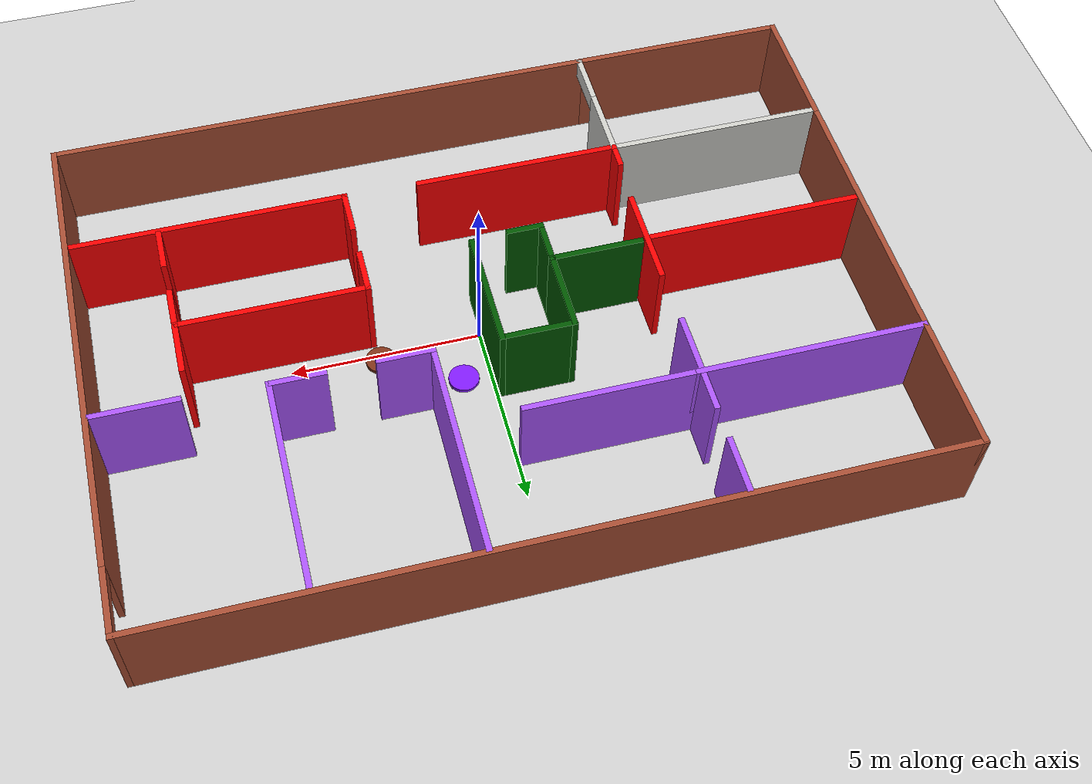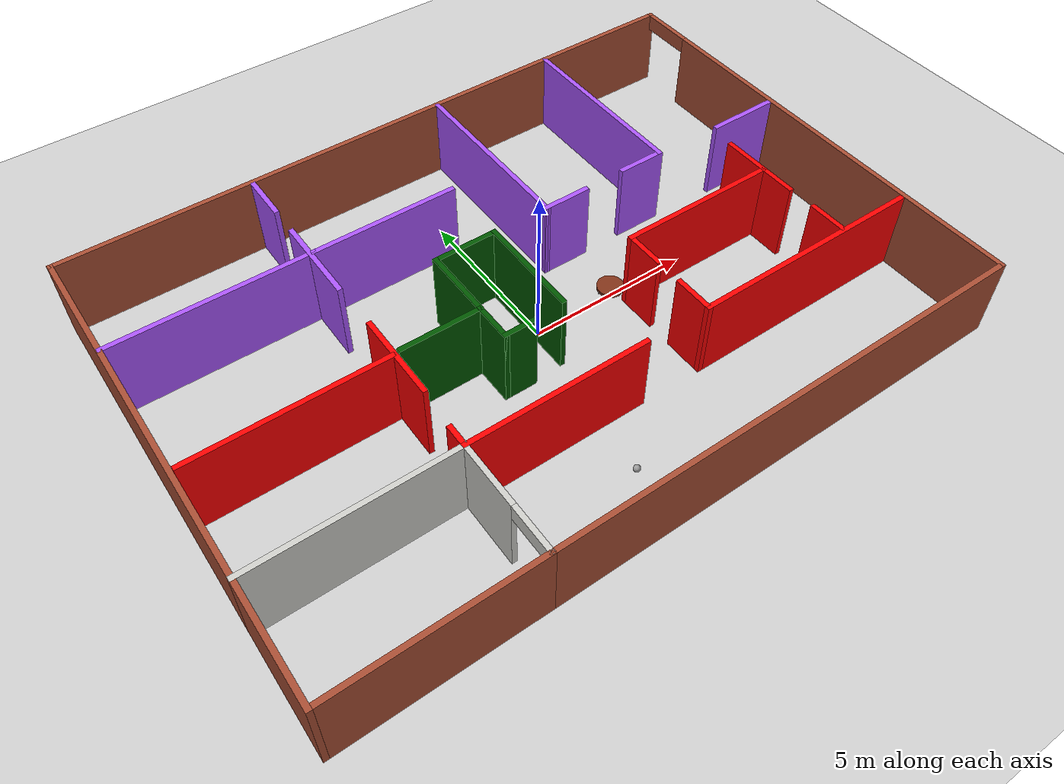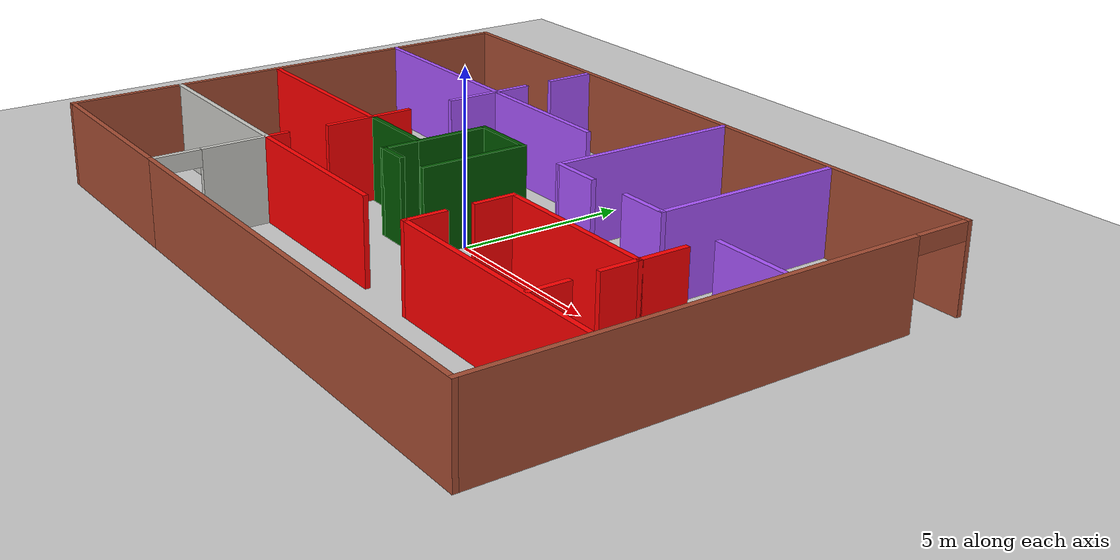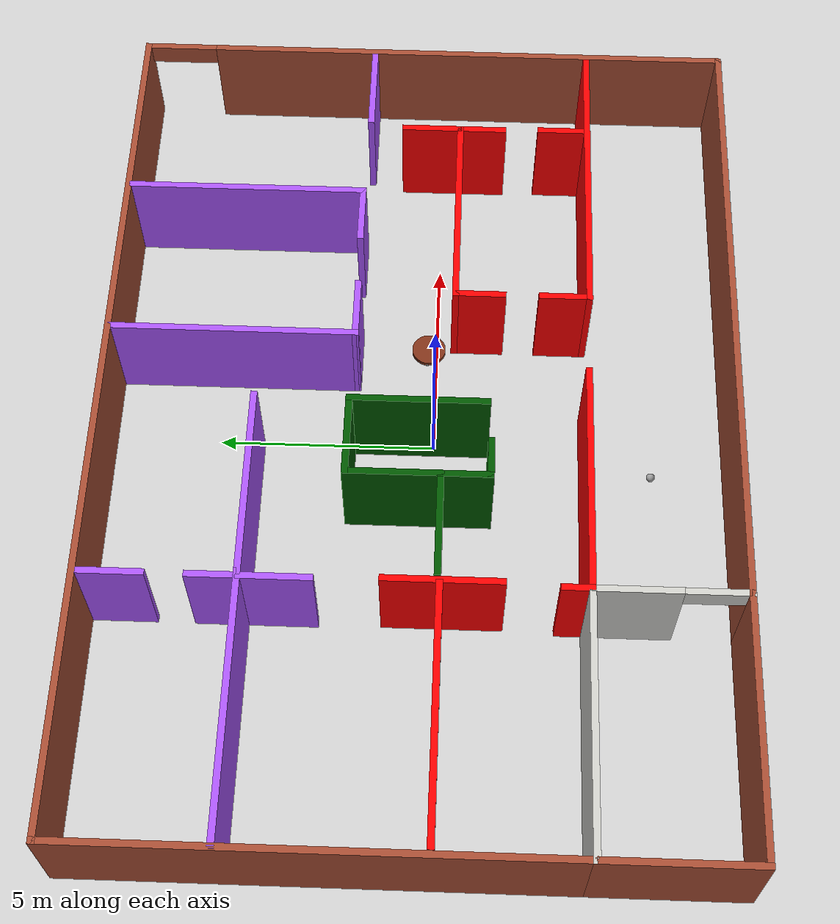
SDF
<sdf version="1.6">
 <world name="default">
  <plugin name="welcome" filename="libwelcome.so"/>
  <light name="sun" type="directional">
   <pose>0 0 10 0 -0 0</pose>
   <diffuse>0.8 0.8 0.8 1</diffuse>
   <specular>0.2 0.2 0.2 1</specular>
   <attenuation>
    <range>1000</range>
    <constant>0.9</constant>
    <linear>0.01</linear>
    <quadratic>0.001</quadratic>
   </attenuation>
   <direction>-0.5 0.1 -0.9</direction>
  </light>
  <model name="ground_plane">
   <static>1</static>
   <link name="link">
    <collision name="collision">
     <geometry><plane><normal>0 0 1</normal><size>100 100</size></plane></geometry>
     <surface><friction><ode><mu>100</mu><mu2>50</mu2></ode></friction></surface>
    </collision>
    <visual name="visual">
     <cast_shadows>0</cast_shadows>
     <geometry><plane><normal>0 0 1</normal><size>100 100</size></plane></geometry>
     <material>
      <script><uri>file://media/materials/scripts/gazebo.material</uri><name>Gazebo/Grey</name></script>
     </material>
    </visual>
   </link>
  </model>
  <gravity>0 0 -9.8</gravity>
  <magnetic_field>6e-06 2.3e-05 -4.2e-05</magnetic_field>
  <atmosphere type="adiabatic"/>
  <physics name="default_physics" default="0" type="ode">
   <max_step_size>0.001</max_step_size>
   <real_time_factor>1</real_time_factor>
   <real_time_update_rate>1000</real_time_update_rate>
  </physics>
  <scene><ambient>0.4 0.4 0.4 1</ambient><background>0.7 0.7 0.7 1</background><shadows>1</shadows></scene>
  <spherical_coordinates>
   <surface_model>EARTH_WGS84</surface_model>
   <latitude_deg>0</latitude_deg>
   <longitude_deg>0</longitude_deg>
   <elevation>0</elevation>
   <heading_deg>0</heading_deg>
  </spherical_coordinates>
  <model name="myhome">
   <pose>-0.1492 0.36301 0 0 -0 0</pose>
   <link name="Wall_0">
    <collision name="Wall_0_Collision">
     <geometry><box><size>11 0.15 2.5</size></box></geometry>
     <pose>0 0 1.25 0 -0 0</pose>
    </collision>
    <visual name="Wall_0_Visual">
     <pose>0 0 1.25 0 -0 0</pose>
     <geometry><box><size>11 0.15 2.5</size></box></geometry>
     <material>
      <script><uri>file://media/materials/scripts/gazebo.material</uri><name>Gazebo/Bricks</name></script>
      <ambient>1 1 1 1</ambient>
     </material>
     <meta><layer>0</layer></meta>
    </visual>
    <pose>-10.175 1.75 0 0 -0 1.5708</pose>
   </link>
   <link name="Wall_1">
    <collision name="Wall_1_Collision">
     <geometry><box><size>20.5 0.15 2.5</size></box></geometry>
     <pose>0 0 1.25 0 -0 0</pose>
    </collision>
    <visual name="Wall_1_Visual">
     <pose>0 0 1.25 0 -0 0</pose>
     <geometry><box><size>20.5 0.15 2.5</size></box></geometry>
     <material>
      <script><uri>file://media/materials/scripts/gazebo.material</uri><name>Gazebo/Bricks</name></script>
      <ambient>1 1 1 1</ambient>
     </material>
     <meta><layer>0</layer></meta>
    </visual>
    <pose>0 7.175 0 0 -0 0</pose>
   </link>
   <link name="Wall_12">
    <collision name="Wall_12_Collision">
     <geometry><box><size>5.75 0.15 2.5</size></box></geometry>
     <pose>0 0 1.25 0 -0 0</pose>
    </collision>
    <visual name="Wall_12_Visual">
     <pose>0 0 1.25 0 -0 0</pose>
     <geometry><box><size>5.75 0.15 2.5</size></box></geometry>
     <material>
      <script><uri>file://media/materials/scripts/gazebo.material</uri><name>Gazebo/Grey</name></script>
      <ambient>0.666667 0.333333 1 1</ambient>
     </material>
     <meta><layer>0</layer></meta>
    </visual>
    <pose>5.80825 4.32699 0 0 0 -1.5708</pose>
   </link>
   <link name="Wall_18">
    <collision name="Wall_18_Collision">
     <geometry><box><size>5.5 0.15 2.5</size></box></geometry>
     <pose>0 0 1.25 0 -0 0</pose>
    </collision>
    <visual name="Wall_18_Visual">
     <pose>0 0 1.25 0 -0 0</pose>
     <geometry><box><size>5.5 0.15 2.5</size></box></geometry>
     <material>
      <script><uri>file://media/materials/scripts/gazebo.material</uri><name>Gazebo/Grey</name></script>
      <ambient>1 0 0 1</ambient>
     </material>
     <meta><layer>0</layer></meta>
    </visual>
    <pose>-1.75 -3.825 0 0 -0 0</pose>
   </link>
   <link name="Wall_2">
    <pose>10.175 0 0 0 0 -1.5708</pose>
    <visual name="Wall_2_Visual_0">
     <pose>-7.17641 0 1.25 0 -0 0</pose>
     <geometry><box><size>0.147184 0.15 2.5</size></box></geometry>
     <material>
      <script><uri>file://media/materials/scripts/gazebo.material</uri><name>Gazebo/Bricks</name></script>
      <ambient>1 1 1 1</ambient>
     </material>
     <meta><layer>0</layer></meta>
    </visual>
    <collision name="Wall_2_Collision_0">
     <geometry><box><size>0.147184 0.15 2.5</size></box></geometry>
     <pose>-7.17641 0 1.25 0 -0 0</pose>
    </collision>
    <visual name="Wall_2_Visual_1">
     <pose>0.893682 0 1.25 0 -0 0</pose>
     <geometry><box><size>12.7126 0.15 2.5</size></box></geometry>
     <material>
      <script><uri>file://media/materials/scripts/gazebo.material</uri><name>Gazebo/Bricks</name></script>
      <ambient>1 1 1 1</ambient>
     </material>
     <meta><layer>0</layer></meta>
    </visual>
    <collision name="Wall_2_Collision_1">
     <geometry><box><size>12.7126 0.15 2.5</size></box></geometry>
     <pose>0.893682 0 1.25 0 -0 0</pose>
    </collision>
    <visual name="Wall_2_Visual_2">
     <pose>-6.28273 0 2.25 0 -0 0</pose>
     <geometry><box><size>1.64018 0.15 0.5</size></box></geometry>
     <material>
      <script><uri>file://media/materials/scripts/gazebo.material</uri><name>Gazebo/Bricks</name></script>
      <ambient>1 1 1 1</ambient>
     </material>
     <meta><layer>0</layer></meta>
    </visual>
    <collision name="Wall_2_Collision_2">
     <geometry><box><size>1.64018 0.15 0.5</size></box></geometry>
     <pose>-6.28273 0 2.25 0 -0 0</pose>
    </collision>
   </link>
   <link name="Wall_20">
    <collision name="Wall_20_Collision">
     <geometry><box><size>7.25 0.15 2.5</size></box></geometry>
     <pose>0 0 1.25 0 -0 0</pose>
    </collision>
    <visual name="Wall_20_Visual">
     <pose>0 0 1.25 0 -0 0</pose>
     <geometry><box><size>7.25 0.15 2.5</size></box></geometry>
     <material>
      <script><uri>file://media/materials/scripts/gazebo.material</uri><name>Gazebo/Grey</name></script>
      <ambient>1 0 0 1</ambient>
     </material>
     <meta><layer>0</layer></meta>
    </visual>
    <pose>6.46692 -3.86004 0 0 -0 0</pose>
   </link>
   <link name="Wall_22">
    <collision name="Wall_22_Collision">
     <geometry><box><size>2.249 0.15 2.5</size></box></geometry>
     <pose>0 0 1.25 0 -0 0</pose>
    </collision>
    <visual name="Wall_22_Visual">
     <pose>0 0 1.25 0 -0 0</pose>
     <geometry><box><size>2.249 0.15 2.5</size></box></geometry>
     <material>
      <script><uri>file://media/materials/scripts/gazebo.material</uri><name>Gazebo/Grey</name></script>
      <ambient>0.666667 0.333333 1 1</ambient>
     </material>
     <meta><layer>0</layer></meta>
    </visual>
    <pose>9.00955 1.43713 0 0 -0 0</pose>
   </link>
   <link name="Wall_3">
    <collision name="Wall_3_Collision">
     <geometry><box><size>14.75 0.15 2.5</size></box></geometry>
     <pose>0 0 1.25 0 -0 0</pose>
    </collision>
    <visual name="Wall_3_Visual">
     <pose>0 0 1.25 0 -0 0</pose>
     <geometry><box><size>14.75 0.15 2.5</size></box></geometry>
     <material>
      <script><uri>file://media/materials/scripts/gazebo.material</uri><name>Gazebo/Bricks</name></script>
      <ambient>1 1 1 1</ambient>
     </material>
     <meta><layer>0</layer></meta>
    </visual>
    <pose>2.875 -7.175 0 0 -0 3.14159</pose>
   </link>
   <link name="Wall_30">
    <collision name="Wall_30_Collision">
     <geometry><box><size>5.75 0.15 2.5</size></box></geometry>
     <pose>0 0 1.25 0 -0 0</pose>
    </collision>
    <visual name="Wall_30_Visual">
     <pose>0 0 1.25 0 -0 0</pose>
     <geometry><box><size>5.75 0.15 2.5</size></box></geometry>
     <material>
      <script><uri>file://media/materials/scripts/gazebo.material</uri><name>Gazebo/Grey</name></script>
      <ambient>1 0 0 1</ambient>
     </material>
     <meta><layer>0</layer></meta>
    </visual>
    <pose>-7.21309 -0.598629 0 0 -0 0</pose>
   </link>
   <link name="Wall_32">
    <collision name="Wall_32_Collision">
     <geometry><box><size>6 0.15 2.5</size></box></geometry>
     <pose>0 0 1.25 0 -0 0</pose>
    </collision>
    <visual name="Wall_32_Visual">
     <pose>0 0 1.25 0 -0 0</pose>
     <geometry><box><size>6 0.15 2.5</size></box></geometry>
     <material>
      <script><uri>file://media/materials/scripts/gazebo.material</uri><name>Gazebo/Grey</name></script>
      <ambient>0.666667 0.333333 1 1</ambient>
     </material>
     <meta><layer>0</layer></meta>
    </visual>
    <pose>-7.22687 3.68053 0 0 -0 0</pose>
   </link>
   <link name="Wall_34">
    <collision name="Wall_34_Collision">
     <geometry><box><size>2.75 0.15 2.5</size></box></geometry>
     <pose>0 0 1.25 0 -0 0</pose>
    </collision>
    <visual name="Wall_34_Visual">
     <pose>0 0 1.25 0 -0 0</pose>
     <geometry><box><size>2.75 0.15 2.5</size></box></geometry>
     <material>
      <script><uri>file://media/materials/scripts/gazebo.material</uri><name>Gazebo/Grey</name></script>
      <ambient>0.666667 0.333333 1 1</ambient>
     </material>
     <meta><layer>0</layer></meta>
    </visual>
    <pose>-4.39439 3.43427 0 0 0 -1.5708</pose>
   </link>
   <link name="Wall_36">
    <collision name="Wall_36_Collision">
     <geometry><box><size>2.7 0.15 2.5</size></box></geometry>
     <pose>0 0 1.25 0 -0 0</pose>
    </collision>
    <visual name="Wall_36_Visual">
     <pose>0 0 1.25 0 -0 0</pose>
     <geometry><box><size>2.7 0.15 2.5</size></box></geometry>
     <material>
      <script><uri>file://media/materials/scripts/gazebo.material</uri><name>Gazebo/Grey</name></script>
      <ambient>1 0 0 1</ambient>
     </material>
     <meta><layer>0</layer></meta>
    </visual>
    <pose>-4.34609 -0.670837 0 0 0 -1.5708</pose>
   </link>
   <link name="Wall_38">
    <collision name="Wall_38_Collision">
     <geometry><box><size>5.75 0.15 2.5</size></box></geometry>
     <pose>0 0 1.25 0 -0 0</pose>
    </collision>
    <visual name="Wall_38_Visual">
     <pose>0 0 1.25 0 -0 0</pose>
     <geometry><box><size>5.75 0.15 2.5</size></box></geometry>
     <material>
      <script><uri>file://media/materials/scripts/gazebo.material</uri><name>Gazebo/Grey</name></script>
      <ambient>0.666667 0.333333 1 1</ambient>
     </material>
     <meta><layer>0</layer></meta>
    </visual>
    <pose>1.76127 4.30479 0 0 0 -1.57115</pose>
   </link>
   <link name="Wall_4">
    <pose>-4.425 -5.5 0 0 -0 1.5708</pose>
    <visual name="Wall_4_Visual_0">
     <pose>-1.68521 0 1.25 0 -0 0</pose>
     <geometry><box><size>0.129586 0.15 2.5</size></box></geometry>
     <material>
      <script><uri>file://media/materials/scripts/gazebo.material</uri><name>Gazebo/CeilingTiled</name></script>
      <ambient>1 0 0 1</ambient>
     </material>
     <meta><layer>0</layer></meta>
    </visual>
    <collision name="Wall_4_Collision_0">
     <geometry><box><size>0.129586 0.15 2.5</size></box></geometry>
     <pose>-1.68521 0 1.25 0 -0 0</pose>
    </collision>
    <visual name="Wall_4_Visual_1">
     <pose>0.746099 0 1.25 0 -0 0</pose>
     <geometry><box><size>2.0078 0.15 2.5</size></box></geometry>
     <material>
      <script><uri>file://media/materials/scripts/gazebo.material</uri><name>Gazebo/CeilingTiled</name></script>
      <ambient>1 0 0 1</ambient>
     </material>
     <meta><layer>0</layer></meta>
    </visual>
    <collision name="Wall_4_Collision_1">
     <geometry><box><size>2.0078 0.15 2.5</size></box></geometry>
     <pose>0.746099 0 1.25 0 -0 0</pose>
    </collision>
    <visual name="Wall_4_Visual_2">
     <pose>-0.939108 0 2.25 0 -0 0</pose>
     <geometry><box><size>1.36261 0.15 0.5</size></box></geometry>
     <material>
      <script><uri>file://media/materials/scripts/gazebo.material</uri><name>Gazebo/CeilingTiled</name></script>
      <ambient>1 0 0 1</ambient>
     </material>
     <meta><layer>0</layer></meta>
    </visual>
    <collision name="Wall_4_Collision_2">
     <geometry><box><size>1.36261 0.15 0.5</size></box></geometry>
     <pose>-0.939108 0 2.25 0 -0 0</pose>
    </collision>
   </link>
   <link name="Wall_40">
    <collision name="Wall_40_Collision">
     <geometry><box><size>4.5 0.15 2.5</size></box></geometry>
     <pose>0 0 1.25 0 -0 0</pose>
    </collision>
    <visual name="Wall_40_Visual">
     <pose>0 0 1.25 0 -0 0</pose>
     <geometry><box><size>4.5 0.15 2.5</size></box></geometry>
     <material>
      <script><uri>file://media/materials/scripts/gazebo.material</uri><name>Gazebo/Grey</name></script>
      <ambient>0.666667 0.333333 1 1</ambient>
     </material>
     <meta><layer>0</layer></meta>
    </visual>
    <pose>-2.12687 3.68053 0 0 -0 0</pose>
   </link>
   <link name="Wall_42">
    <collision name="Wall_42_Collision">
     <geometry><box><size>2.5 0.15 2.5</size></box></geometry>
     <pose>0 0 1.25 0 -0 0</pose>
    </collision>
    <visual name="Wall_42_Visual">
     <pose>0 0 1.25 0 -0 0</pose>
     <geometry><box><size>2.5 0.15 2.5</size></box></geometry>
     <material>
      <script><uri>file://media/materials/scripts/gazebo.material</uri><name>Gazebo/Grey</name></script>
      <ambient>0 0.333333 0 1</ambient>
     </material>
     <meta><layer>0</layer></meta>
    </visual>
    <pose>-2.98604 -0.552368 0 0 -0 0</pose>
   </link>
   <link name="Wall_43">
    <collision name="Wall_43_Collision">
     <geometry><box><size>2.25 0.15 2.5</size></box></geometry>
     <pose>0 0 1.25 0 -0 0</pose>
    </collision>
    <visual name="Wall_43_Visual">
     <pose>0 0 1.25 0 -0 0</pose>
     <geometry><box><size>2.25 0.15 2.5</size></box></geometry>
     <material>
      <script><uri>file://media/materials/scripts/gazebo.material</uri><name>Gazebo/Grey</name></script>
      <ambient>0 0.333333 0 1</ambient>
     </material>
     <meta><layer>0</layer></meta>
    </visual>
    <pose>-1.81104 0.497632 0 0 -0 1.5708</pose>
   </link>
   <link name="Wall_44">
    <collision name="Wall_44_Collision">
     <geometry><box><size>2 0.15 2.5</size></box></geometry>
     <pose>0 0 1.25 0 -0 0</pose>
    </collision>
    <visual name="Wall_44_Visual">
     <pose>0 0 1.25 0 -0 0</pose>
     <geometry><box><size>2 0.15 2.5</size></box></geometry>
     <material>
      <script><uri>file://media/materials/scripts/gazebo.material</uri><name>Gazebo/Grey</name></script>
      <ambient>0 0.333333 0 1</ambient>
     </material>
     <meta><layer>0</layer></meta>
    </visual>
    <pose>-0.886042 1.54763 0 0 -0 0</pose>
   </link>
   <link name="Wall_45">
    <collision name="Wall_45_Collision">
     <geometry><box><size>3.25 0.15 2.5</size></box></geometry>
     <pose>0 0 1.25 0 -0 0</pose>
    </collision>
    <visual name="Wall_45_Visual">
     <pose>0 0 1.25 0 -0 0</pose>
     <geometry><box><size>3.25 0.15 2.5</size></box></geometry>
     <material>
      <script><uri>file://media/materials/scripts/gazebo.material</uri><name>Gazebo/Grey</name></script>
      <ambient>0 0.333333 0 1</ambient>
     </material>
     <meta><layer>0</layer></meta>
    </visual>
    <pose>0.038958 -0.002368 0 0 0 -1.5708</pose>
   </link>
   <link name="Wall_49">
    <collision name="Wall_49_Collision">
     <geometry><box><size>1.25 0.15 2.5</size></box></geometry>
     <pose>0 0 1.25 0 -0 0</pose>
    </collision>
    <visual name="Wall_49_Visual">
     <pose>0 0 1.25 0 -0 0</pose>
     <geometry><box><size>1.25 0.15 2.5</size></box></geometry>
     <material>
      <script><uri>file://media/materials/scripts/gazebo.material</uri><name>Gazebo/Grey</name></script>
      <ambient>0 0.333333 0 1</ambient>
     </material>
     <meta><layer>0</layer></meta>
    </visual>
    <pose>-1.81104 -1.10237 0 0 0 -1.5708</pose>
   </link>
   <link name="Wall_5">
    <collision name="Wall_5_Collision">
     <geometry><box><size>5.89995 0.15 2.5</size></box></geometry>
     <pose>0 0 1.25 0 -0 0</pose>
    </collision>
    <visual name="Wall_5_Visual">
     <pose>0 0 1.25 0 -0 0</pose>
     <geometry><box><size>5.89995 0.15 2.5</size></box></geometry>
     <material>
      <script><uri>file://media/materials/scripts/gazebo.material</uri><name>Gazebo/CeilingTiled</name></script>
      <ambient>1 0 0 1</ambient>
     </material>
     <meta><layer>0</layer></meta>
    </visual>
    <pose>-7.29998 -3.82493 0 0 -0 3.14157</pose>
   </link>
   <link name="Wall_50">
    <collision name="Wall_50_Collision">
     <geometry><box><size>1 0.15 2.5</size></box></geometry>
     <pose>0 0 1.25 0 -0 0</pose>
    </collision>
    <visual name="Wall_50_Visual">
     <pose>0 0 1.25 0 -0 0</pose>
     <geometry><box><size>1 0.15 2.5</size></box></geometry>
     <material>
      <script><uri>file://media/materials/scripts/gazebo.material</uri><name>Gazebo/Grey</name></script>
      <ambient>0 0.333333 0 1</ambient>
     </material>
     <meta><layer>0</layer></meta>
    </visual>
    <pose>-1.38604 -1.65237 0 0 -0 0</pose>
   </link>
   <link name="Wall_53">
    <collision name="Wall_53_Collision">
     <geometry><box><size>5 0.15 2.5</size></box></geometry>
     <pose>0 0 1.25 0 -0 0</pose>
    </collision>
    <visual name="Wall_53_Visual">
     <pose>0 0 1.25 0 -0 0</pose>
     <geometry><box><size>5 0.15 2.5</size></box></geometry>
     <material>
      <script><uri>file://media/materials/scripts/gazebo.material</uri><name>Gazebo/Grey</name></script>
      <ambient>1 0 0 1</ambient>
     </material>
     <meta><layer>0</layer></meta>
    </visual>
    <pose>5.34192 -0.760045 0 0 -0 0</pose>
   </link>
   <link name="Wall_54">
    <collision name="Wall_54_Collision">
     <geometry><box><size>1.5 0.15 2.5</size></box></geometry>
     <pose>0 0 1.25 0 -0 0</pose>
    </collision>
    <visual name="Wall_54_Visual">
     <pose>0 0 1.25 0 -0 0</pose>
     <geometry><box><size>1.5 0.15 2.5</size></box></geometry>
     <material>
      <script><uri>file://media/materials/scripts/gazebo.material</uri><name>Gazebo/Grey</name></script>
      <ambient>1 0 0 1</ambient>
     </material>
     <meta><layer>0</layer></meta>
    </visual>
    <pose>7.76692 -0.085045 0 0 -0 1.5708</pose>
   </link>
   <link name="Wall_56">
    <collision name="Wall_56_Collision">
     <geometry><box><size>1.5 0.15 2.5</size></box></geometry>
     <pose>0 0 1.25 0 -0 0</pose>
    </collision>
    <visual name="Wall_56_Visual">
     <pose>0 0 1.25 0 -0 0</pose>
     <geometry><box><size>1.5 0.15 2.5</size></box></geometry>
     <material>
      <script><uri>file://media/materials/scripts/gazebo.material</uri><name>Gazebo/Grey</name></script>
      <ambient>0.666667 0.333333 1 1</ambient>
     </material>
     <meta><layer>0</layer></meta>
    </visual>
    <pose>2.43527 1.50479 0 0 -0 0</pose>
   </link>
   <link name="Wall_58">
    <collision name="Wall_58_Collision">
     <geometry><box><size>1.5 0.15 2.5</size></box></geometry>
     <pose>0 0 1.25 0 -0 0</pose>
    </collision>
    <visual name="Wall_58_Visual">
     <pose>0 0 1.25 0 -0 0</pose>
     <geometry><box><size>1.5 0.15 2.5</size></box></geometry>
     <material>
      <script><uri>file://media/materials/scripts/gazebo.material</uri><name>Gazebo/Grey</name></script>
      <ambient>0.666667 0.333333 1 1</ambient>
     </material>
     <meta><layer>0</layer></meta>
    </visual>
    <pose>5.13325 1.52699 0 0 -0 3.14159</pose>
   </link>
   <link name="Wall_6">
    <collision name="Wall_6_Collision">
     <geometry><box><size>3.5 0.15 2.5</size></box></geometry>
     <pose>0 0 1.25 0 -0 0</pose>
    </collision>
    <visual name="Wall_6_Visual">
     <pose>0 0 1.25 0 -0 0</pose>
     <geometry><box><size>3.5 0.15 2.5</size></box></geometry>
     <material>
      <script><uri>file://media/materials/scripts/gazebo.material</uri><name>Gazebo/Bricks</name></script>
      <ambient>1 1 1 1</ambient>
     </material>
     <meta><layer>0</layer></meta>
    </visual>
    <pose>-10.175 -5.49987 0 0 0 -1.5708</pose>
   </link>
   <link name="Wall_60">
    <collision name="Wall_60_Collision">
     <geometry><box><size>1.5 0.15 2.5</size></box></geometry>
     <pose>0 0 1.25 0 -0 0</pose>
    </collision>
    <visual name="Wall_60_Visual">
     <pose>0 0 1.25 0 -0 0</pose>
     <geometry><box><size>1.5 0.15 2.5</size></box></geometry>
     <material>
      <script><uri>file://media/materials/scripts/gazebo.material</uri><name>Gazebo/Grey</name></script>
      <ambient>0.666667 0.333333 1 1</ambient>
     </material>
     <meta><layer>0</layer></meta>
    </visual>
    <pose>-4.39235 6.3826 0 0 0 -1.5708</pose>
   </link>
   <link name="Wall_62">
    <collision name="Wall_62_Collision">
     <geometry><box><size>0.75 0.15 2.5</size></box></geometry>
     <pose>0 0 1.25 0 -0 0</pose>
    </collision>
    <visual name="Wall_62_Visual">
     <pose>0 0 1.25 0 -0 0</pose>
     <geometry><box><size>0.75 0.15 2.5</size></box></geometry>
     <material>
      <script><uri>file://media/materials/scripts/gazebo.material</uri><name>Gazebo/Grey</name></script>
      <ambient>1 0 0 1</ambient>
     </material>
     <meta><layer>0</layer></meta>
    </visual>
    <pose>-4.425 -3.525 0 0 -0 1.5708</pose>
   </link>
   <link name="Wall_64">
    <collision name="Wall_64_Collision">
     <geometry><box><size>1.2 0.15 2.5</size></box></geometry>
     <pose>0 0 1.25 0 -0 0</pose>
    </collision>
    <visual name="Wall_64_Visual">
     <pose>0 0 1.25 0 -0 0</pose>
     <geometry><box><size>1.2 0.15 2.5</size></box></geometry>
     <material>
      <script><uri>file://media/materials/scripts/gazebo.material</uri><name>Gazebo/Grey</name></script>
      <ambient>1 0 0 1</ambient>
     </material>
     <meta><layer>0</layer></meta>
    </visual>
    <pose>7.76692 -1.28504 0 0 0 -1.5708</pose>
   </link>
   <link name="Wall_66">
    <collision name="Wall_66_Collision">
     <geometry><box><size>1.2 0.15 2.5</size></box></geometry>
     <pose>0 0 1.25 0 -0 0</pose>
    </collision>
    <visual name="Wall_66_Visual">
     <pose>0 0 1.25 0 -0 0</pose>
     <geometry><box><size>1.2 0.15 2.5</size></box></geometry>
     <material>
      <script><uri>file://media/materials/scripts/gazebo.material</uri><name>Gazebo/Grey</name></script>
      <ambient>1 0 0 1</ambient>
     </material>
     <meta><layer>0</layer></meta>
    </visual>
    <pose>7.79748 -3.25164 0 0 0 -1.5708</pose>
   </link>
   <link name="Wall_68">
    <collision name="Wall_68_Collision">
     <geometry><box><size>1.25 0.15 2.5</size></box></geometry>
     <pose>0 0 1.25 0 -0 0</pose>
    </collision>
    <visual name="Wall_68_Visual">
     <pose>0 0 1.25 0 -0 0</pose>
     <geometry><box><size>1.25 0.15 2.5</size></box></geometry>
     <material>
      <script><uri>file://media/materials/scripts/gazebo.material</uri><name>Gazebo/Grey</name></script>
      <ambient>1 0 0 1</ambient>
     </material>
     <meta><layer>0</layer></meta>
    </visual>
    <pose>2.91692 -1.31004 0 0 0 -1.5708</pose>
   </link>
   <link name="Wall_70">
    <collision name="Wall_70_Collision">
     <geometry><box><size>1.25 0.15 2.5</size></box></geometry>
     <pose>0 0 1.25 0 -0 0</pose>
    </collision>
    <visual name="Wall_70_Visual">
     <pose>0 0 1.25 0 -0 0</pose>
     <geometry><box><size>1.25 0.15 2.5</size></box></geometry>
     <material>
      <script><uri>file://media/materials/scripts/gazebo.material</uri><name>Gazebo/Grey</name></script>
      <ambient>1 0 0 1</ambient>
     </material>
     <meta><layer>0</layer></meta>
    </visual>
    <pose>2.91692 -3.31005 0 0 -0 1.5708</pose>
   </link>
   <link name="Wall_9">
    <collision name="Wall_9_Collision">
     <geometry><box><size>5.75 0.15 2.5</size></box></geometry>
     <pose>0 0 1.25 0 -0 0</pose>
    </collision>
    <visual name="Wall_9_Visual">
     <pose>0 0 1.25 0 -0 0</pose>
     <geometry><box><size>5.75 0.15 2.5</size></box></geometry>
     <material>
      <script><uri>file://media/materials/scripts/gazebo.material</uri><name>Gazebo/Bricks</name></script>
      <ambient>1 1 1 1</ambient>
     </material>
     <meta><layer>0</layer></meta>
    </visual>
    <pose>-7.225 -7.175 0 0 -0 3.14159</pose>
   </link>
   <static>1</static>
  </model>
  <model name="myrobot">
   <link name="link_0">
    <pose>-0.004537 0.01028 0.0375 0 -0 0</pose>
    <inertial>
     <mass>1</mass>
     <inertia><ixx>0.145833</ixx><ixy>0</ixy><ixz>0</ixz><iyy>0.145833</iyy><iyz>0</iyz><izz>0.125</izz></inertia>
    </inertial>
    <visual name="visual">
     <geometry><cylinder><radius>0.4</radius><length>0.1</length></cylinder></geometry>
     <material>
      <lighting>1</lighting>
      <script><uri>file://media/materials/scripts/gazebo.material</uri><name>Gazebo/Grey</name></script>
      <ambient>0.8 0.6 0.2 0.8</ambient>
      <diffuse>0.5 0.2 0.1 1</diffuse>
      <specular>0.01 0.01 0.01 1</specular>
      <emissive>0 0 0 1</emissive>
      <shader type="vertex"><normal_map>__default__</normal_map></shader>
     </material>
    </visual>
    <collision name="collision">
     <geometry><cylinder><radius>0.4</radius><length>0.1</length></cylinder></geometry>
     <surface>
      <friction>
       <ode><mu>1</mu><mu2>1</mu2><fdir1>0 0 0</fdir1><slip1>0</slip1><slip2>0</slip2></ode>
       <torsional>
        <coefficient>1</coefficient>
        <patch_radius>0</patch_radius>
        <surface_radius>0</surface_radius>
        <use_patch_radius>1</use_patch_radius>
        <ode><slip>0</slip></ode>
       </torsional>
      </friction>
      <bounce><restitution_coefficient>0</restitution_coefficient><threshold>1e+06</threshold></bounce>
      <contact>
       <collide_without_contact>0</collide_without_contact>
       <collide_without_contact_bitmask>1</collide_without_contact_bitmask>
       <collide_bitmask>1</collide_bitmask>
       <ode>
        <soft_cfm>0</soft_cfm>
        <soft_erp>0.2</soft_erp>
        <kp>1e+13</kp>
        <kd>1</kd>
        <max_vel>0.01</max_vel>
        <min_depth>0</min_depth>
       </ode>
       <bullet>
        <split_impulse>1</split_impulse>
        <split_impulse_penetration_threshold>-0.01</split_impulse_penetration_threshold>
        <soft_cfm>0</soft_cfm>
        <soft_erp>0.2</soft_erp>
        <kp>1e+13</kp>
        <kd>1</kd>
       </bullet>
      </contact>
     </surface>
    </collision>
   </link>
   <link name="link_1">
    <pose>-0.004537 -0.329719 -0.0125 0 -0 0</pose>
    <inertial>
     <mass>1</mass>
     <inertia><ixx>0.1</ixx><ixy>0</ixy><ixz>0</ixz><iyy>0.1</iyy><iyz>0</iyz><izz>0.1</izz></inertia>
    </inertial>
    <visual name="visual">
     <geometry><sphere><radius>0.05</radius></sphere></geometry>
     <material>
      <lighting>1</lighting>
      <script><uri>file://media/materials/scripts/gazebo.material</uri><name>Gazebo/Grey</name></script>
      <ambient>0.3 0.3 0.3 1</ambient>
      <diffuse>0.7 0.7 0.7 1</diffuse>
      <specular>0.01 0.01 0.01 1</specular>
      <emissive>0 0 0 1</emissive>
      <shader type="vertex"><normal_map>__default__</normal_map></shader>
     </material>
    </visual>
    <collision name="collision">
     <geometry><sphere><radius>0.05</radius></sphere></geometry>
     <surface>
      <friction>
       <ode><mu>1</mu><mu2>1</mu2><fdir1>0 0 0</fdir1><slip1>0</slip1><slip2>0</slip2></ode>
       <torsional>
        <coefficient>1</coefficient>
        <patch_radius>0</patch_radius>
        <surface_radius>0</surface_radius>
        <use_patch_radius>1</use_patch_radius>
        <ode><slip>0</slip></ode>
       </torsional>
      </friction>
      <bounce><restitution_coefficient>0</restitution_coefficient><threshold>1e+06</threshold></bounce>
      <contact>
       <collide_without_contact>0</collide_without_contact>
       <collide_without_contact_bitmask>1</collide_without_contact_bitmask>
       <collide_bitmask>1</collide_bitmask>
       <ode>
        <soft_cfm>0</soft_cfm>
        <soft_erp>0.2</soft_erp>
        <kp>1e+13</kp>
        <kd>1</kd>
        <max_vel>0.01</max_vel>
        <min_depth>0</min_depth>
       </ode>
       <bullet>
        <split_impulse>1</split_impulse>
        <split_impulse_penetration_threshold>-0.01</split_impulse_penetration_threshold>
        <soft_cfm>0</soft_cfm>
        <soft_erp>0.2</soft_erp>
        <kp>1e+13</kp>
        <kd>1</kd>
       </bullet>
      </contact>
     </surface>
    </collision>
   </link>
   <link name="link_1_clone">
    <pose>0.324443 0.160282 -0.0125 0 -0 0</pose>
    <inertial>
     <mass>1</mass>
     <inertia><ixx>0.1</ixx><ixy>0</ixy><ixz>0</ixz><iyy>0.1</iyy><iyz>0</iyz><izz>0.1</izz></inertia>
    </inertial>
    <visual name="visual">
     <geometry><sphere><radius>0.05</radius></sphere></geometry>
     <material>
      <lighting>1</lighting>
      <script><uri>file://media/materials/scripts/gazebo.material</uri><name>Gazebo/Grey</name></script>
      <ambient>0.3 0.3 0.3 1</ambient>
      <diffuse>0.7 0.7 0.7 1</diffuse>
      <specular>0.01 0.01 0.01 1</specular>
      <emissive>0 0 0 1</emissive>
      <shader type="vertex"><normal_map>__default__</normal_map></shader>
     </material>
    </visual>
    <collision name="collision">
     <geometry><sphere><radius>0.05</radius></sphere></geometry>
     <surface>
      <friction>
       <ode><mu>1</mu><mu2>1</mu2><fdir1>0 0 0</fdir1><slip1>0</slip1><slip2>0</slip2></ode>
       <torsional>
        <coefficient>1</coefficient>
        <patch_radius>0</patch_radius>
        <surface_radius>0</surface_radius>
        <use_patch_radius>1</use_patch_radius>
        <ode><slip>0</slip></ode>
       </torsional>
      </friction>
      <bounce><restitution_coefficient>0</restitution_coefficient><threshold>1e+06</threshold></bounce>
      <contact>
       <collide_without_contact>0</collide_without_contact>
       <collide_without_contact_bitmask>1</collide_without_contact_bitmask>
       <collide_bitmask>1</collide_bitmask>
       <ode>
        <soft_cfm>0</soft_cfm>
        <soft_erp>0.2</soft_erp>
        <kp>1e+13</kp>
        <kd>1</kd>
        <max_vel>0.01</max_vel>
        <min_depth>0</min_depth>
       </ode>
       <bullet>
        <split_impulse>1</split_impulse>
        <split_impulse_penetration_threshold>-0.01</split_impulse_penetration_threshold>
        <soft_cfm>0</soft_cfm>
        <soft_erp>0.2</soft_erp>
        <kp>1e+13</kp>
        <kd>1</kd>
       </bullet>
      </contact>
     </surface>
    </collision>
   </link>
   <link name="link_1_clone_clone">
    <pose>-0.315368 0.169158 -0.0125 0 -0 0</pose>
    <inertial>
     <mass>1</mass>
     <inertia><ixx>0.1</ixx><ixy>0</ixy><ixz>0</ixz><iyy>0.1</iyy><iyz>0</iyz><izz>0.1</izz></inertia>
    </inertial>
    <visual name="visual">
     <geometry><sphere><radius>0.05</radius></sphere></geometry>
     <material>
      <lighting>1</lighting>
      <script><uri>file://media/materials/scripts/gazebo.material</uri><name>Gazebo/Grey</name></script>
      <ambient>0.3 0.3 0.3 1</ambient>
      <diffuse>0.7 0.7 0.7 1</diffuse>
      <specular>0.01 0.01 0.01 1</specular>
      <emissive>0 0 0 1</emissive>
      <shader type="vertex"><normal_map>__default__</normal_map></shader>
     </material>
    </visual>
    <collision name="collision">
     <geometry><sphere><radius>0.05</radius></sphere></geometry>
     <surface>
      <friction>
       <ode><mu>1</mu><mu2>1</mu2><fdir1>0 0 0</fdir1><slip1>0</slip1><slip2>0</slip2></ode>
       <torsional>
        <coefficient>1</coefficient>
        <patch_radius>0</patch_radius>
        <surface_radius>0</surface_radius>
        <use_patch_radius>1</use_patch_radius>
        <ode><slip>0</slip></ode>
       </torsional>
      </friction>
      <bounce><restitution_coefficient>0</restitution_coefficient><threshold>1e+06</threshold></bounce>
      <contact>
       <collide_without_contact>0</collide_without_contact>
       <collide_without_contact_bitmask>1</collide_without_contact_bitmask>
       <collide_bitmask>1</collide_bitmask>
       <ode>
        <soft_cfm>0</soft_cfm>
        <soft_erp>0.2</soft_erp>
        <kp>1e+13</kp>
        <kd>1</kd>
        <max_vel>0.01</max_vel>
        <min_depth>0</min_depth>
       </ode>
       <bullet>
        <split_impulse>1</split_impulse>
        <split_impulse_penetration_threshold>-0.01</split_impulse_penetration_threshold>
        <soft_cfm>0</soft_cfm>
        <soft_erp>0.2</soft_erp>
        <kp>1e+13</kp>
        <kd>1</kd>
       </bullet>
      </contact>
     </surface>
    </collision>
   </link>
   <joint name="link_0_JOINT_0" type="ball">
    <parent>link_0</parent>
    <child>link_1</child>
    <physics>
     <ode><limit><cfm>0</cfm><erp>0.2</erp></limit><suspension><cfm>0</cfm><erp>0.2</erp></suspension></ode>
    </physics>
   </joint>
   <joint name="link_0_JOINT_1" type="ball">
    <parent>link_0</parent>
    <child>link_1_clone</child>
    <physics>
     <ode><limit><cfm>0</cfm><erp>0.2</erp></limit><suspension><cfm>0</cfm><erp>0.2</erp></suspension></ode>
    </physics>
   </joint>
   <joint name="link_0_JOINT_2" type="ball">
    <parent>link_0</parent>
    <child>link_1_clone_clone</child>
    <physics>
     <ode><limit><cfm>0</cfm><erp>0.2</erp></limit><suspension><cfm>0</cfm><erp>0.2</erp></suspension></ode>
    </physics>
   </joint>
   <static>0</static>
   <pose>2.68809 0.213142 0.0625 0 -0 2.65425</pose>
  </model>
  <model name="myrobot_0">
   <link name="link_0">
    <pose>-0.004537 0.01028 0.0375 0 -0 0</pose>
    <inertial>
     <mass>1</mass>
     <inertia><ixx>0.145833</ixx><ixy>0</ixy><ixz>0</ixz><iyy>0.145833</iyy><iyz>0</iyz><izz>0.125</izz></inertia>
    </inertial>
    <visual name="visual">
     <geometry><cylinder><radius>0.4</radius><length>0.1</length></cylinder></geometry>
     <material>
      <lighting>1</lighting>
      <script><uri>file://media/materials/scripts/gazebo.material</uri><name>Gazebo/Grey</name></script>
      <ambient>0.5 0.1 1 1</ambient>
      <diffuse>0.7 0.7 0.7 1</diffuse>
      <specular>0.01 0.01 0.01 1</specular>
      <emissive>0 0 0 1</emissive>
      <shader type="vertex"><normal_map>__default__</normal_map></shader>
     </material>
    </visual>
    <collision name="collision">
     <geometry><cylinder><radius>0.4</radius><length>0.1</length></cylinder></geometry>
     <surface>
      <friction>
       <ode><mu>1</mu><mu2>1</mu2><fdir1>0 0 0</fdir1><slip1>0</slip1><slip2>0</slip2></ode>
       <torsional>
        <coefficient>1</coefficient>
        <patch_radius>0</patch_radius>
        <surface_radius>0</surface_radius>
        <use_patch_radius>1</use_patch_radius>
        <ode><slip>0</slip></ode>
       </torsional>
      </friction>
      <bounce><restitution_coefficient>0</restitution_coefficient><threshold>1e+06</threshold></bounce>
      <contact>
       <collide_without_contact>0</collide_without_contact>
       <collide_without_contact_bitmask>1</collide_without_contact_bitmask>
       <collide_bitmask>1</collide_bitmask>
       <ode>
        <soft_cfm>0</soft_cfm>
        <soft_erp>0.2</soft_erp>
        <kp>1e+13</kp>
        <kd>1</kd>
        <max_vel>0.01</max_vel>
        <min_depth>0</min_depth>
       </ode>
       <bullet>
        <split_impulse>1</split_impulse>
        <split_impulse_penetration_threshold>-0.01</split_impulse_penetration_threshold>
        <soft_cfm>0</soft_cfm>
        <soft_erp>0.2</soft_erp>
        <kp>1e+13</kp>
        <kd>1</kd>
       </bullet>
      </contact>
     </surface>
    </collision>
   </link>
   <link name="link_1">
    <pose>-0.004537 -0.339719 -0.0125 0 -0 0</pose>
    <inertial>
     <mass>1</mass>
     <inertia><ixx>0.1</ixx><ixy>0</ixy><ixz>0</ixz><iyy>0.1</iyy><iyz>0</iyz><izz>0.1</izz></inertia>
    </inertial>
    <visual name="visual">
     <geometry><sphere><radius>0.05</radius></sphere></geometry>
     <material>
      <lighting>1</lighting>
      <script><uri>file://media/materials/scripts/gazebo.material</uri><name>Gazebo/Grey</name></script>
      <ambient>0.3 0.3 0.3 1</ambient>
      <diffuse>0.7 0.7 0.7 1</diffuse>
      <specular>0.01 0.01 0.01 1</specular>
      <emissive>0 0 0 1</emissive>
      <shader type="vertex"><normal_map>__default__</normal_map></shader>
     </material>
    </visual>
    <collision name="collision">
     <geometry><sphere><radius>0.05</radius></sphere></geometry>
     <surface>
      <friction>
       <ode><mu>1</mu><mu2>1</mu2><fdir1>0 0 0</fdir1><slip1>0</slip1><slip2>0</slip2></ode>
       <torsional>
        <coefficient>1</coefficient>
        <patch_radius>0</patch_radius>
        <surface_radius>0</surface_radius>
        <use_patch_radius>1</use_patch_radius>
        <ode><slip>0</slip></ode>
       </torsional>
      </friction>
      <bounce><restitution_coefficient>0</restitution_coefficient><threshold>1e+06</threshold></bounce>
      <contact>
       <collide_without_contact>0</collide_without_contact>
       <collide_without_contact_bitmask>1</collide_without_contact_bitmask>
       <collide_bitmask>1</collide_bitmask>
       <ode>
        <soft_cfm>0</soft_cfm>
        <soft_erp>0.2</soft_erp>
        <kp>1e+13</kp>
        <kd>1</kd>
        <max_vel>0.01</max_vel>
        <min_depth>0</min_depth>
       </ode>
       <bullet>
        <split_impulse>1</split_impulse>
        <split_impulse_penetration_threshold>-0.01</split_impulse_penetration_threshold>
        <soft_cfm>0</soft_cfm>
        <soft_erp>0.2</soft_erp>
        <kp>1e+13</kp>
        <kd>1</kd>
       </bullet>
      </contact>
     </surface>
    </collision>
   </link>
   <link name="link_1_clone">
    <pose>0.324443 0.160282 -0.0125 0 -0 0</pose>
    <inertial>
     <mass>1</mass>
     <inertia><ixx>0.1</ixx><ixy>0</ixy><ixz>0</ixz><iyy>0.1</iyy><iyz>0</iyz><izz>0.1</izz></inertia>
    </inertial>
    <visual name="visual">
     <geometry><sphere><radius>0.05</radius></sphere></geometry>
     <material>
      <lighting>1</lighting>
      <script><uri>file://media/materials/scripts/gazebo.material</uri><name>Gazebo/Grey</name></script>
      <ambient>0.3 0.3 0.3 1</ambient>
      <diffuse>0.7 0.7 0.7 1</diffuse>
      <specular>0.01 0.01 0.01 1</specular>
      <emissive>0 0 0 1</emissive>
      <shader type="vertex"><normal_map>__default__</normal_map></shader>
     </material>
    </visual>
    <collision name="collision">
     <geometry><sphere><radius>0.05</radius></sphere></geometry>
     <surface>
      <friction>
       <ode><mu>1</mu><mu2>1</mu2><fdir1>0 0 0</fdir1><slip1>0</slip1><slip2>0</slip2></ode>
       <torsional>
        <coefficient>1</coefficient>
        <patch_radius>0</patch_radius>
        <surface_radius>0</surface_radius>
        <use_patch_radius>1</use_patch_radius>
        <ode><slip>0</slip></ode>
       </torsional>
      </friction>
      <bounce><restitution_coefficient>0</restitution_coefficient><threshold>1e+06</threshold></bounce>
      <contact>
       <collide_without_contact>0</collide_without_contact>
       <collide_without_contact_bitmask>1</collide_without_contact_bitmask>
       <collide_bitmask>1</collide_bitmask>
       <ode>
        <soft_cfm>0</soft_cfm>
        <soft_erp>0.2</soft_erp>
        <kp>1e+13</kp>
        <kd>1</kd>
        <max_vel>0.01</max_vel>
        <min_depth>0</min_depth>
       </ode>
       <bullet>
        <split_impulse>1</split_impulse>
        <split_impulse_penetration_threshold>-0.01</split_impulse_penetration_threshold>
        <soft_cfm>0</soft_cfm>
        <soft_erp>0.2</soft_erp>
        <kp>1e+13</kp>
        <kd>1</kd>
       </bullet>
      </contact>
     </surface>
    </collision>
   </link>
   <link name="link_1_clone_clone">
    <pose>-0.315368 0.169158 -0.0125 0 -0 0</pose>
    <inertial>
     <mass>1</mass>
     <inertia><ixx>0.1</ixx><ixy>0</ixy><ixz>0</ixz><iyy>0.1</iyy><iyz>0</iyz><izz>0.1</izz></inertia>
    </inertial>
    <visual name="visual">
     <geometry><sphere><radius>0.05</radius></sphere></geometry>
     <material>
      <lighting>1</lighting>
      <script><uri>file://media/materials/scripts/gazebo.material</uri><name>Gazebo/Grey</name></script>
      <ambient>0.3 0.3 0.3 1</ambient>
      <diffuse>0.7 0.7 0.7 1</diffuse>
      <specular>0.01 0.01 0.01 1</specular>
      <emissive>0 0 0 1</emissive>
      <shader type="vertex"><normal_map>__default__</normal_map></shader>
     </material>
    </visual>
    <collision name="collision">
     <geometry><sphere><radius>0.05</radius></sphere></geometry>
     <surface>
      <friction>
       <ode><mu>1</mu><mu2>1</mu2><fdir1>0 0 0</fdir1><slip1>0</slip1><slip2>0</slip2></ode>
       <torsional>
        <coefficient>1</coefficient>
        <patch_radius>0</patch_radius>
        <surface_radius>0</surface_radius>
        <use_patch_radius>1</use_patch_radius>
        <ode><slip>0</slip></ode>
       </torsional>
      </friction>
      <bounce><restitution_coefficient>0</restitution_coefficient><threshold>1e+06</threshold></bounce>
      <contact>
       <collide_without_contact>0</collide_without_contact>
       <collide_without_contact_bitmask>1</collide_without_contact_bitmask>
       <collide_bitmask>1</collide_bitmask>
       <ode>
        <soft_cfm>0</soft_cfm>
        <soft_erp>0.2</soft_erp>
        <kp>1e+13</kp>
        <kd>1</kd>
        <max_vel>0.01</max_vel>
        <min_depth>0</min_depth>
       </ode>
       <bullet>
        <split_impulse>1</split_impulse>
        <split_impulse_penetration_threshold>-0.01</split_impulse_penetration_threshold>
        <soft_cfm>0</soft_cfm>
        <soft_erp>0.2</soft_erp>
        <kp>1e+13</kp>
        <kd>1</kd>
       </bullet>
      </contact>
     </surface>
    </collision>
   </link>
   <joint name="link_0_JOINT_0" type="ball">
    <parent>link_0</parent>
    <child>link_1</child>
    <physics>
     <ode><limit><cfm>0</cfm><erp>0.2</erp></limit><suspension><cfm>0</cfm><erp>0.2</erp></suspension></ode>
    </physics>
   </joint>
   <joint name="link_0_JOINT_1" type="ball">
    <parent>link_0</parent>
    <child>link_1_clone</child>
    <physics>
     <ode><limit><cfm>0</cfm><erp>0.2</erp></limit><suspension><cfm>0</cfm><erp>0.2</erp></suspension></ode>
    </physics>
   </joint>
   <joint name="link_0_JOINT_2" type="ball">
    <parent>link_0</parent>
    <child>link_1_clone_clone</child>
    <physics>
     <ode><limit><cfm>0</cfm><erp>0.2</erp></limit><suspension><cfm>0</cfm><erp>0.2</erp></suspension></ode>
    </physics>
   </joint>
   <static>0</static>
   <pose>0.731504 1.26807 0.0625 0 -0 0.018186</pose>
  </model>
  <model name="my_ball">
   <link name="link_0">
    <inertial>
     <mass>1</mass>
     <inertia><ixx>0.1</ixx><ixy>0</ixy><ixz>0</ixz><iyy>0.1</iyy><iyz>0</iyz><izz>0.1</izz></inertia>
    </inertial>
    <visual name="visual">
     <geometry><sphere><radius>0.1</radius></sphere></geometry>
     <material>
      <lighting>1</lighting>
      <script><uri>file://media/materials/scripts/gazebo.material</uri><name>Gazebo/Grey</name></script>
      <shader type="pixel"><normal_map>__default__</normal_map></shader>
      <ambient>1 1 1 1</ambient>
      <diffuse>1 1 1 1</diffuse>
      <specular>0.01 0.01 0.01 1</specular>
      <emissive>1 1 1 1</emissive>
     </material>
    </visual>
    <collision name="collision">
     <geometry><sphere><radius>0.1</radius></sphere></geometry>
     <surface>
      <friction>
       <ode><mu>1</mu><mu2>1</mu2><fdir1>0 0 0</fdir1><slip1>0</slip1><slip2>0</slip2></ode>
       <torsional>
        <coefficient>1</coefficient>
        <patch_radius>0</patch_radius>
        <surface_radius>0</surface_radius>
        <use_patch_radius>1</use_patch_radius>
        <ode><slip>0</slip></ode>
       </torsional>
      </friction>
      <bounce><restitution_coefficient>0</restitution_coefficient><threshold>1e+06</threshold></bounce>
      <contact>
       <collide_without_contact>0</collide_without_contact>
       <collide_without_contact_bitmask>1</collide_without_contact_bitmask>
       <collide_bitmask>1</collide_bitmask>
       <ode>
        <soft_cfm>0</soft_cfm>
        <soft_erp>0.2</soft_erp>
        <kp>1e+13</kp>
        <kd>1</kd>
        <max_vel>0.01</max_vel>
        <min_depth>0</min_depth>
       </ode>
       <bullet>
        <split_impulse>1</split_impulse>
        <split_impulse_penetration_threshold>-0.01</split_impulse_penetration_threshold>
        <soft_cfm>0</soft_cfm>
        <soft_erp>0.2</soft_erp>
        <kp>1e+13</kp>
        <kd>1</kd>
       </bullet>
      </contact>
     </surface>
    </collision>
   </link>
   <static>0</static>
   <pose>-0.631326 -5.06522 0.1 0 -0 0</pose>
  </model>
 </world>
</sdf>
